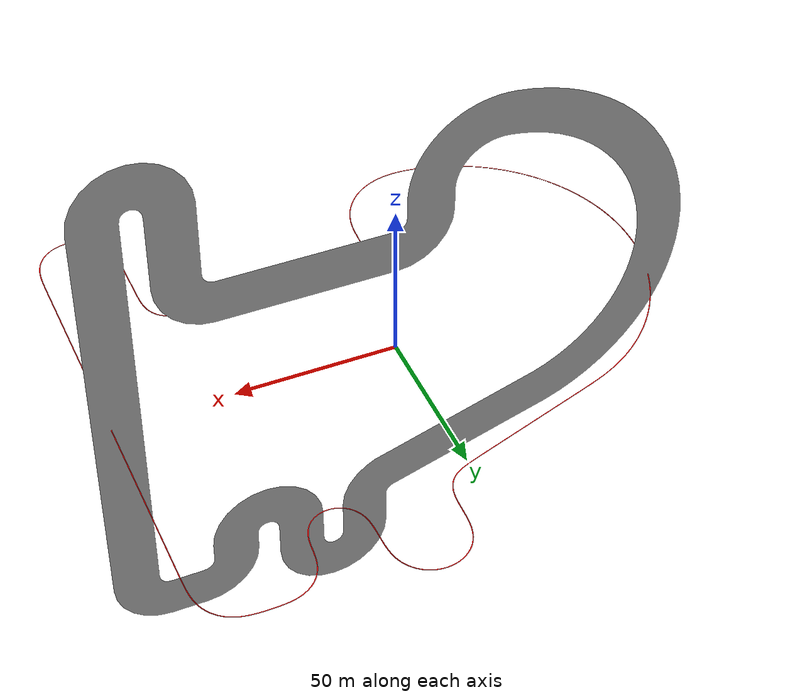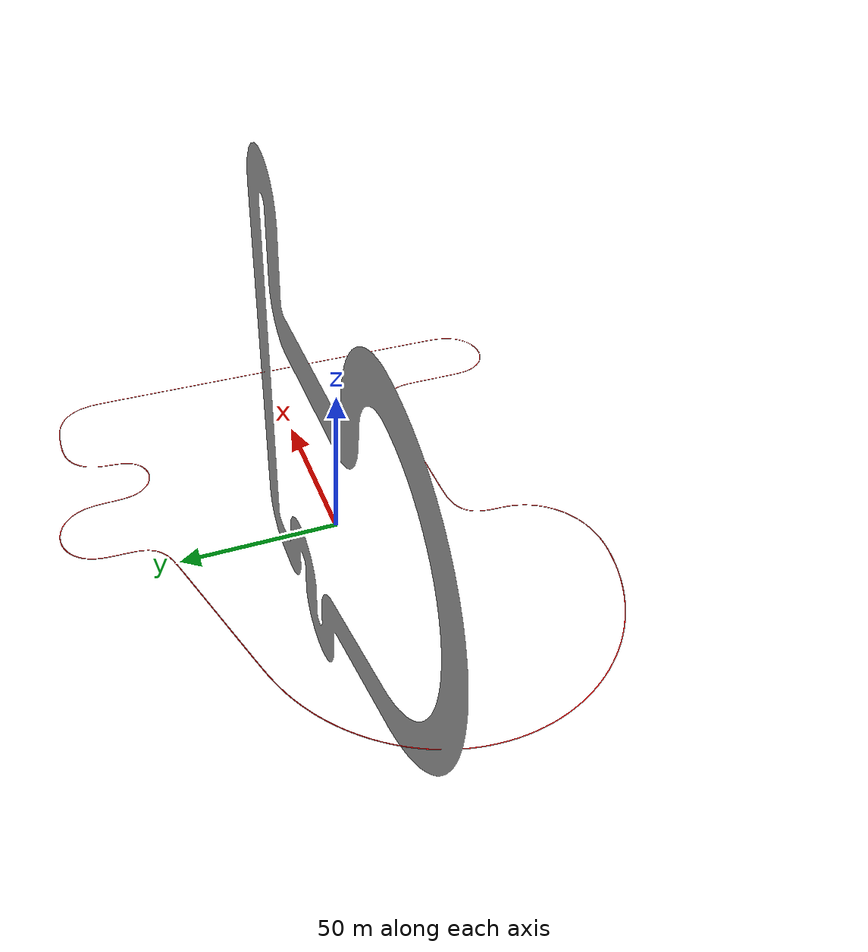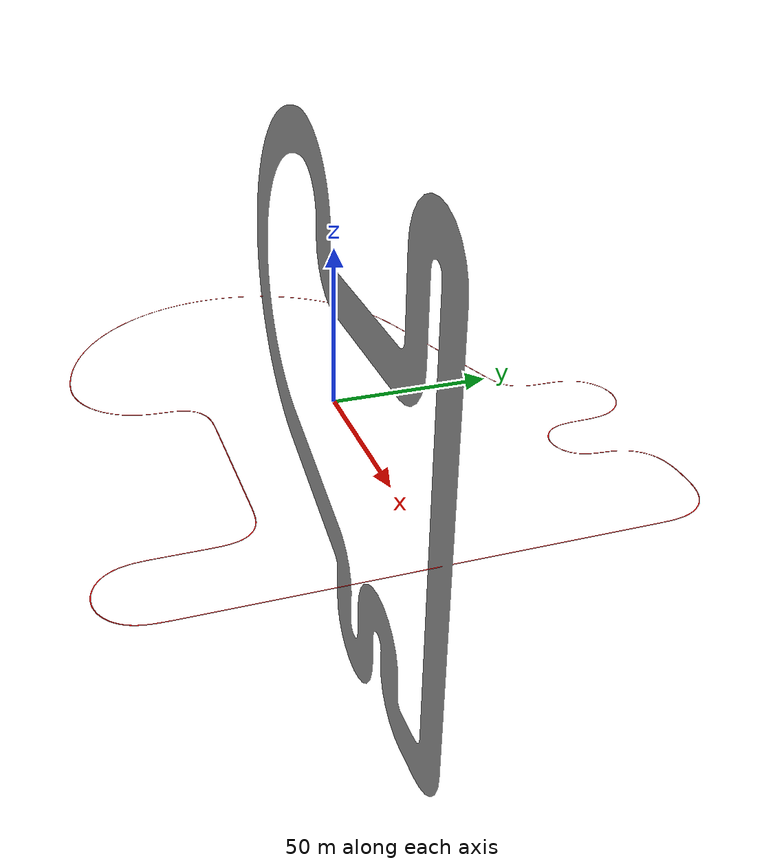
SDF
<?xml version="1.0" ?>
<sdf version="1.10">
  <world name="default">

    <plugin name="gz::sim::systems::Physics" filename="gz-sim-physics-system"/>
    <plugin name="gz::sim::systems::SceneBroadcaster" filename="gz-sim-scene-broadcaster-system"/>
    <plugin filename="gz-sim-user-commands-system" name="gz::sim::systems::UserCommands">
    </plugin>
    <plugin filename="gz-sim-sensors-system" name="gz::sim::systems::Sensors">
      <render_engine>ogre2</render_engine>
    </plugin>

    <gravity>0 0 -9.8</gravity>
    <atmosphere type="adiabatic"/>

    <scene>
      <ambient>0.4 0.4 0.4 1</ambient>
      <background>0.7 0.7 0.7 1</background>
      <shadows>true</shadows>
      <grid>false</grid>
      <camera name="user_camera">
        <track_visual>
          <name>f1</name>
          <static>true</static>
          <use_model_frame>true</use_model_frame>
          <xyz>-2 0 0.6</xyz>
          <inherit_yaw>true</inherit_yaw>
        </track_visual>
      </camera>
    </scene>

    <!-- Circuito -->
    <include>
      <uri>model://simple_circuit_wide</uri>
      <pose>0 0 0 0 0 0</pose>
    </include>

    <!-- Luz -->
    <light name="sun" type="directional">
      <pose>0 0 10 0 0 0</pose>
      <diffuse>0.8 0.8 0.8 1</diffuse>
      <specular>0.2 0.2 0.2 1</specular>
      <direction>-0.5 0.1 -0.9</direction>
      <cast_shadows>true</cast_shadows>
    </light>

  </world>
</sdf>

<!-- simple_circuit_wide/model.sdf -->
<sdf version="1.3">
    <model name="simple_circuit_wide">
        <static>true</static>
        <link name="simple_circuit_wide">
            <pose>0 0 0 0 0 0</pose>
            <collision name="collision">
                <geometry>
                    <plane>
                        <normal>0 0 1</normal>
                        <size>1000 1000</size>
                    </plane>
                </geometry>
            </collision>
            <visual name="visual">
                <pose>0 0 0 0 0 0</pose>
                <geometry>
                    <mesh>
                        <uri>model://simple_circuit/meshes/simple_line.dae</uri>
                        <scale>1.6 1.6 1.6</scale>
                    </mesh>
                </geometry>
            </visual>
        </link>
        <link name="rival_lane">
            <pose>0 0 0 0 0 0</pose>
            <visual name="visual">
                <geometry>
                    <mesh>
                        <uri>model://simple_circuit_wide/meshes/rival_lane.obj</uri>
                        <scale>1.6 1.6 1.6</scale>
                    </mesh>
                </geometry>
                <material>
                    <ambient>0.3 0 0 1</ambient>
                    <diffuse>1 0 0 1</diffuse>
                    <specular>0 0 0 1</specular>
                </material>
            </visual>
        </link>
        <link name="pared">
            <pose>0 0 0 0 0 0</pose>
            <collision name="collision">
                <geometry>
                    <mesh>
                        <uri>model://simple_circuit/meshes/pared.stl</uri>
                        <scale>1.6 1.6 1.6</scale>
                    </mesh>
                </geometry>
            </collision>
        </link>
    </model>
</sdf>
